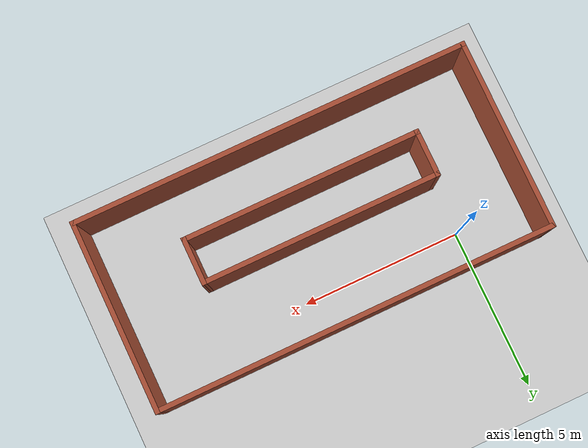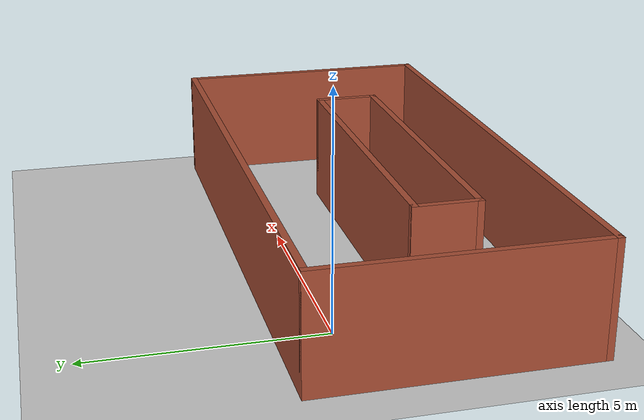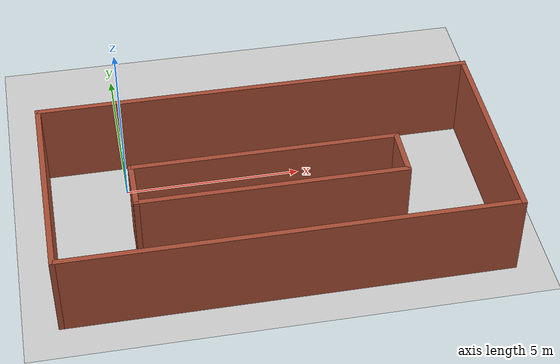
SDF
<sdf version="1.6">
 <world name="default">
  <light name="sun" type="directional">
   <pose>0 0 10 0 -0 0</pose>
   <diffuse>0.8 0.8 0.8 1</diffuse>
   <specular>0.2 0.2 0.2 1</specular>
   <attenuation>
    <range>1000</range>
    <constant>0.9</constant>
    <linear>0.01</linear>
    <quadratic>0.001</quadratic>
   </attenuation>
   <direction>-0.5 0.1 -0.9</direction>
  </light>
  <model name="ground_plane">
   <static>1</static>
   <link name="link">
    <collision name="collision">
     <geometry><plane><normal>0 0 1</normal><size>100 100</size></plane></geometry>
     <surface>
      <contact><collide_bitmask>65535</collide_bitmask></contact>
      <friction><ode><mu>100</mu><mu2>50</mu2></ode></friction>
     </surface>
    </collision>
    <visual name="visual">
     <cast_shadows>0</cast_shadows>
     <geometry><plane><normal>0 0 1</normal><size>100 100</size></plane></geometry>
     <material>
      <script><uri>file://media/materials/scripts/gazebo.material</uri><name>Gazebo/Grey</name></script>
     </material>
    </visual>
   </link>
  </model>
  <gravity>0 0 -9.8</gravity>
  <magnetic_field>6e-06 2.3e-05 -4.2e-05</magnetic_field>
  <atmosphere type="adiabatic"/>
  <physics name="default_physics" default="0" type="ode">
   <max_step_size>0.020</max_step_size>
   <real_time_factor>1</real_time_factor>
   <real_time_update_rate>1000</real_time_update_rate>
  </physics>
  <scene><ambient>0.4 0.4 0.4 1</ambient><background>0.7 0.7 0.7 1</background><shadows>1</shadows></scene>
  <audio><device>default</device></audio>
  <spherical_coordinates>
   <surface_model>EARTH_WGS84</surface_model>
   <latitude_deg>0</latitude_deg>
   <longitude_deg>0</longitude_deg>
   <elevation>0</elevation>
   <heading_deg>0</heading_deg>
  </spherical_coordinates>
  <model name="Untitled">
   <pose>3.93501 -1.83169 0 0 -0 0</pose>
   <link name="Wall_10">
    <collision name="Wall_10_Collision">
     <geometry><box><size>6 0.15 2.5</size></box></geometry>
     <pose>0 0 1.25 0 -0 0</pose>
    </collision>
    <visual name="Wall_10_Visual">
     <pose>0 0 1.25 0 -0 0</pose>
     <geometry><box><size>6 0.15 2.5</size></box></geometry>
     <material>
      <script><uri>file://media/materials/scripts/gazebo.material</uri><name>Gazebo/Bricks</name></script>
      <ambient>1 1 1 1</ambient>
     </material>
     <meta><layer>0</layer></meta>
    </visual>
    <pose>-6.175 0 0 0 -0 1.5708</pose>
   </link>
   <link name="Wall_11">
    <collision name="Wall_11_Collision">
     <geometry><box><size>12.5 0.15 2.5</size></box></geometry>
     <pose>0 0 1.25 0 -0 0</pose>
    </collision>
    <visual name="Wall_11_Visual">
     <pose>0 0 1.25 0 -0 0</pose>
     <geometry><box><size>12.5 0.15 2.5</size></box></geometry>
     <material>
      <script><uri>file://media/materials/scripts/gazebo.material</uri><name>Gazebo/Bricks</name></script>
      <ambient>1 1 1 1</ambient>
     </material>
     <meta><layer>0</layer></meta>
    </visual>
    <pose>0 2.925 0 0 -0 0</pose>
   </link>
   <link name="Wall_12">
    <collision name="Wall_12_Collision">
     <geometry><box><size>6 0.15 2.5</size></box></geometry>
     <pose>0 0 1.25 0 -0 0</pose>
    </collision>
    <visual name="Wall_12_Visual">
     <pose>0 0 1.25 0 -0 0</pose>
     <geometry><box><size>6 0.15 2.5</size></box></geometry>
     <material>
      <script><uri>file://media/materials/scripts/gazebo.material</uri><name>Gazebo/Bricks</name></script>
      <ambient>1 1 1 1</ambient>
     </material>
     <meta><layer>0</layer></meta>
    </visual>
    <pose>6.175 0 0 0 -0 -1.5708</pose>
   </link>
   <link name="Wall_13">
    <collision name="Wall_13_Collision">
     <geometry><box><size>12.5 0.15 2.5</size></box></geometry>
     <pose>0 0 1.25 0 -0 0</pose>
    </collision>
    <visual name="Wall_13_Visual">
     <pose>0 0 1.25 0 -0 0</pose>
     <geometry><box><size>12.5 0.15 2.5</size></box></geometry>
     <material>
      <script><uri>file://media/materials/scripts/gazebo.material</uri><name>Gazebo/Bricks</name></script>
      <ambient>1 1 1 1</ambient>
     </material>
     <meta><layer>0</layer></meta>
    </visual>
    <pose>0 -2.925 0 0 -0 3.14159</pose>
   </link>
   <link name="Wall_5">
    <collision name="Wall_5_Collision">
     <geometry><box><size>7.5 0.15 2.5</size></box></geometry>
     <pose>0 0 1.25 0 -0 0</pose>
    </collision>
    <visual name="Wall_5_Visual">
     <pose>0 0 1.25 0 -0 0</pose>
     <geometry><box><size>7.5 0.15 2.5</size></box></geometry>
     <material>
      <script><uri>file://media/materials/scripts/gazebo.material</uri><name>Gazebo/Bricks</name></script>
      <ambient>1 1 1 1</ambient>
     </material>
     <meta><layer>0</layer></meta>
    </visual>
    <pose>-0.174428 0.194973 0 0 -0 0</pose>
   </link>
   <link name="Wall_6">
    <collision name="Wall_6_Collision">
     <geometry><box><size>1.5 0.15 2.5</size></box></geometry>
     <pose>0 0 1.25 0 -0 0</pose>
    </collision>
    <visual name="Wall_6_Visual">
     <pose>0 0 1.25 0 -0 0</pose>
     <geometry><box><size>1.5 0.15 2.5</size></box></geometry>
     <material>
      <script><uri>file://media/materials/scripts/gazebo.material</uri><name>Gazebo/Bricks</name></script>
      <ambient>1 1 1 1</ambient>
     </material>
     <meta><layer>0</layer></meta>
    </visual>
    <pose>3.50057 -0.480027 0 0 -0 -1.5708</pose>
   </link>
   <link name="Wall_7">
    <collision name="Wall_7_Collision">
     <geometry><box><size>7.5 0.15 2.5</size></box></geometry>
     <pose>0 0 1.25 0 -0 0</pose>
    </collision>
    <visual name="Wall_7_Visual">
     <pose>0 0 1.25 0 -0 0</pose>
     <geometry><box><size>7.5 0.15 2.5</size></box></geometry>
     <material>
      <script><uri>file://media/materials/scripts/gazebo.material</uri><name>Gazebo/Bricks</name></script>
      <ambient>1 1 1 1</ambient>
     </material>
     <meta><layer>0</layer></meta>
    </visual>
    <pose>-0.174428 -1.15503 0 0 -0 3.14159</pose>
   </link>
   <link name="Wall_8">
    <collision name="Wall_8_Collision">
     <geometry><box><size>1.5 0.15 2.5</size></box></geometry>
     <pose>0 0 1.25 0 -0 0</pose>
    </collision>
    <visual name="Wall_8_Visual">
     <pose>0 0 1.25 0 -0 0</pose>
     <geometry><box><size>1.5 0.15 2.5</size></box></geometry>
     <material>
      <script><uri>file://media/materials/scripts/gazebo.material</uri><name>Gazebo/Bricks</name></script>
      <ambient>1 1 1 1</ambient>
     </material>
     <meta><layer>0</layer></meta>
    </visual>
    <pose>-3.84943 -0.480027 0 0 -0 1.5708</pose>
   </link>
   <static>1</static>
  </model>
 </world>
</sdf>
